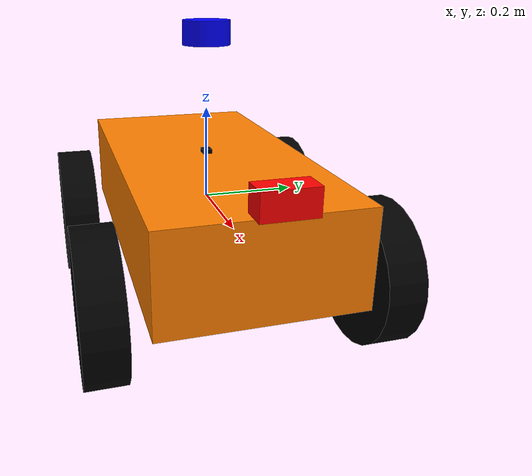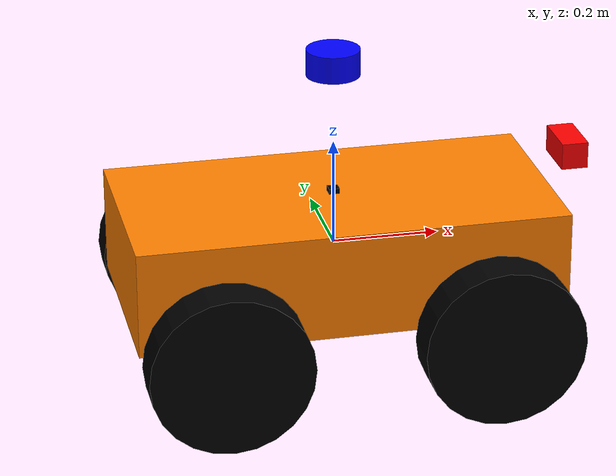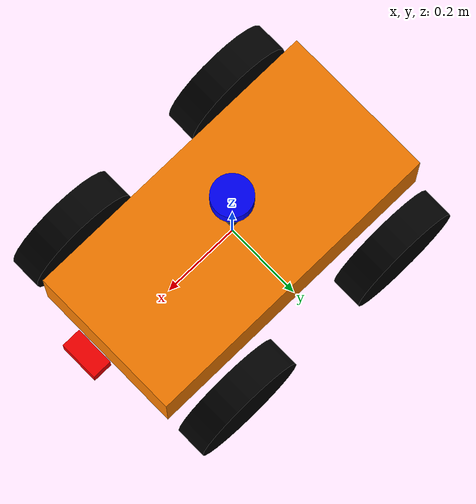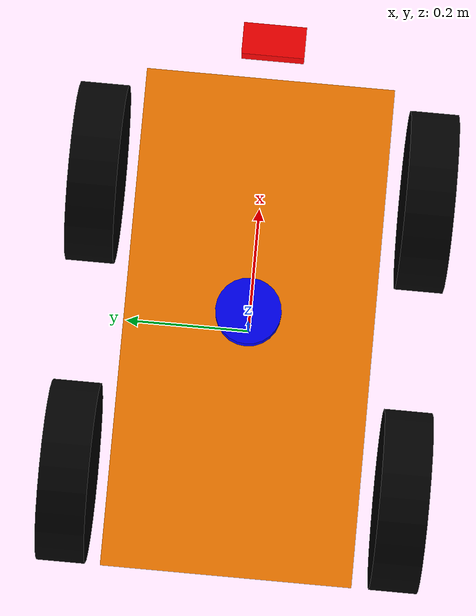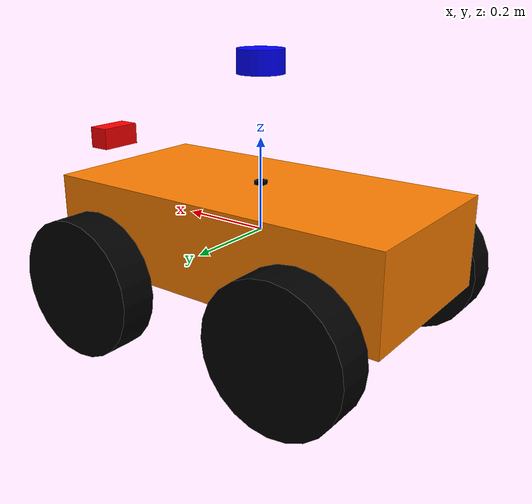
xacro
<?xml version="1.0"?>
<robot name="delivery_robot" xmlns:xacro="http://ros.org/wiki/xacro">

  <!-- ===================== Sensor mounts (edit these) ===================== -->
  <!-- Offsets are from base_link (chassis centre), metres / radians.         -->

  <xacro:property name="lidar_x" value="0.0"/>
  <xacro:property name="lidar_y" value="0.0"/>
  <xacro:property name="lidar_z" value="0.357"/>
  <xacro:property name="lidar_yaw" value="0.0"/>

  <!-- TODO(TDM-13): replace with measured values.
       Placeholders are the sim's values. -->
  <xacro:property name="imu_x" value="0.0"/>
  <xacro:property name="imu_y" value="0.0"/>
  <xacro:property name="imu_z" value="0.1"/>
  <xacro:property name="imu_yaw" value="0.0"/>

  <xacro:property name="camera_x" value="0.45"/>
  <xacro:property name="camera_y" value="0.0"/>
  <xacro:property name="camera_z" value="0.15"/>
  <xacro:property name="camera_pitch" value="0.0"/>
  <xacro:property name="camera_yaw" value="0.0"/>

  <!-- ============================ Chassis ================================= -->
  <xacro:property name="chassis_length" value="0.8"/>
  <xacro:property name="chassis_width" value="0.4"/>
  <xacro:property name="chassis_height" value="0.2"/>
  <xacro:property name="wheel_radius" value="0.15"/>
  <xacro:property name="wheel_width" value="0.08"/>
  <xacro:property name="wheel_mass" value="2.0"/>
  <xacro:property name="chassis_mass" value="20.0"/>
  <xacro:property name="wheelbase" value="0.5"/>
  <xacro:property name="track_width" value="0.55"/>

  <xacro:macro name="box_inertia" params="m w h d">
    <inertial>
      <mass value="${m}"/>
      <inertia ixx="${m/12 * (h*h + d*d)}" ixy="0" ixz="0"
               iyy="${m/12 * (w*w + d*d)}" iyz="0"
               izz="${m/12 * (w*w + h*h)}"/>
    </inertial>
  </xacro:macro>

  <xacro:macro name="cylinder_inertia" params="m r h">
    <inertial>
      <mass value="${m}"/>
      <inertia ixx="${m*(3*r*r + h*h)/12}" ixy="0" ixz="0"
               iyy="${m*(3*r*r + h*h)/12}" iyz="0"
               izz="${m*r*r/2}"/>
    </inertial>
  </xacro:macro>

  <link name="base_link">
    <visual>
      <geometry>
        <box size="${chassis_length} ${chassis_width} ${chassis_height}"/>
      </geometry>
      <material name="orange"><color rgba="1 0.5 0 1"/></material>
    </visual>
    <collision>
      <geometry>
        <box size="${chassis_length} ${chassis_width} ${chassis_height}"/>
      </geometry>
    </collision>
    <xacro:box_inertia m="${chassis_mass}" w="${chassis_width}" h="${chassis_height}" d="${chassis_length}"/>
  </link>

  <link name="base_footprint"/>

  <joint name="base_joint" type="fixed">
    <parent link="base_link"/>
    <child link="base_footprint"/>
    <origin xyz="0 0 ${-wheel_radius}" rpy="0 0 0"/>
  </joint>

  <!-- ============================= Wheels ================================= -->
  <xacro:macro name="rear_wheel" params="prefix y_offset">
    <link name="${prefix}_wheel">
      <visual>
        <geometry><cylinder radius="${wheel_radius}" length="${wheel_width}"/></geometry>
        <material name="black"><color rgba="0 0 0 1"/></material>
      </visual>
      <collision>
        <geometry><cylinder radius="${wheel_radius}" length="${wheel_width}"/></geometry>
      </collision>
      <xacro:cylinder_inertia m="${wheel_mass}" r="${wheel_radius}" h="${wheel_width}"/>
    </link>

    <joint name="${prefix}_wheel_joint" type="continuous">
      <parent link="base_link"/>
      <child link="${prefix}_wheel"/>
      <origin xyz="${-wheelbase/2} ${y_offset} ${-chassis_height/2}" rpy="-1.5707 0 0"/>
      <dynamics damping="0.5" friction="0.1"/>
      <axis xyz="0 0 1"/>
    </joint>
  </xacro:macro>

  <xacro:macro name="front_wheel" params="prefix y_offset">
    <link name="${prefix}_steering_link">
      <inertial>
        <mass value="0.1"/>
        <inertia ixx="0.01" ixy="0" ixz="0" iyy="0.01" iyz="0" izz="0.01"/>
      </inertial>
    </link>

    <joint name="${prefix}_steering_joint" type="revolute">
      <parent link="base_link"/>
      <child link="${prefix}_steering_link"/>
      <origin xyz="${wheelbase/2} ${y_offset} ${-chassis_height/2}" rpy="0 0 0"/>
      <axis xyz="0 0 1"/>
      <limit lower="-0.6" upper="0.6" effort="100" velocity="1.0"/>
    </joint>

    <link name="${prefix}_wheel">
      <visual>
        <geometry><cylinder radius="${wheel_radius}" length="${wheel_width}"/></geometry>
        <material name="black"><color rgba="0 0 0 1"/></material>
      </visual>
      <collision>
        <geometry><cylinder radius="${wheel_radius}" length="${wheel_width}"/></geometry>
      </collision>
      <xacro:cylinder_inertia m="${wheel_mass}" r="${wheel_radius}" h="${wheel_width}"/>
    </link>

    <joint name="${prefix}_wheel_joint" type="continuous">
      <parent link="${prefix}_steering_link"/>
      <child link="${prefix}_wheel"/>
      <origin xyz="0 0 0" rpy="-1.5707 0 0"/>
      <dynamics damping="0.5" friction="0.1"/>
      <axis xyz="0 0 1"/>
    </joint>
  </xacro:macro>

  <xacro:rear_wheel prefix="rear_left" y_offset="${track_width/2}"/>
  <xacro:rear_wheel prefix="rear_right" y_offset="${-track_width/2}"/>
  <xacro:front_wheel prefix="front_left" y_offset="${track_width/2}"/>
  <xacro:front_wheel prefix="front_right" y_offset="${-track_width/2}"/>

  <!-- ============================= Sensors ================================ -->
  <link name="lidar_link">
    <visual>
      <geometry><cylinder radius="0.05" length="0.05"/></geometry>
      <material name="blue"><color rgba="0 0 1 1"/></material>
    </visual>
  </link>
  <joint name="lidar_joint" type="fixed">
    <parent link="base_link"/>
    <child link="lidar_link"/>
    <origin xyz="${lidar_x} ${lidar_y} ${lidar_z}" rpy="0 0 ${lidar_yaw}"/>
  </joint>

  <link name="imu_link">
    <visual>
      <geometry><box size="0.02 0.02 0.02"/></geometry>
      <material name="black"><color rgba="0 0 0 1"/></material>
    </visual>
  </link>
  <joint name="imu_joint" type="fixed">
    <parent link="base_link"/>
    <child link="imu_link"/>
    <origin xyz="${imu_x} ${imu_y} ${imu_z}" rpy="0 0 ${imu_yaw}"/>
  </joint>

  <link name="gps_link"/>
  <joint name="gps_joint" type="fixed">
    <parent link="base_link"/>
    <child link="gps_link"/>
    <origin xyz="0 0 0" rpy="0 0 0"/>
  </joint>

  <link name="camera_link">
    <visual>
      <geometry><box size="0.05 0.1 0.05"/></geometry>
      <material name="red"><color rgba="1 0 0 1"/></material>
    </visual>
  </link>
  <joint name="camera_joint" type="fixed">
    <parent link="base_link"/>
    <child link="camera_link"/>
    <origin xyz="${camera_x} ${camera_y} ${camera_z}" rpy="0 ${camera_pitch} ${camera_yaw}"/>
  </joint>

</robot>
